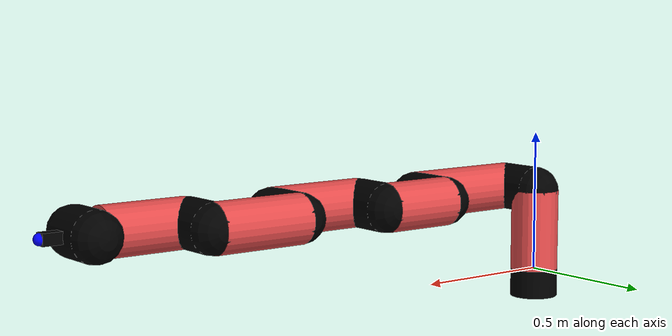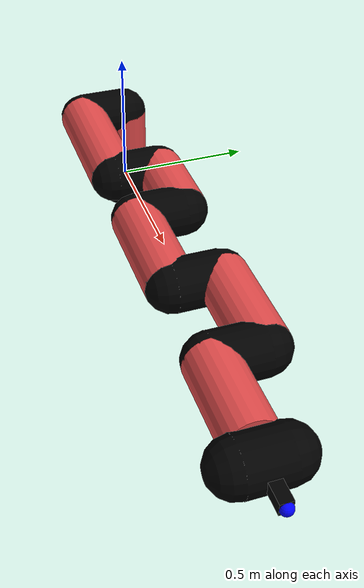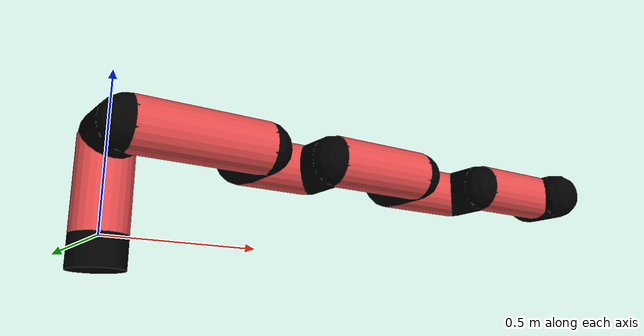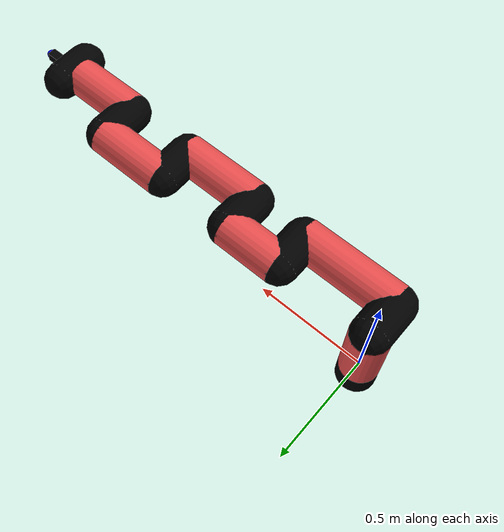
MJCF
<mujoco model="manipulator">
		<compiler angle="degree" coordinate="local" inertiafromgeom="auto" meshdir="meshes/"/>
		<option gravity="0 0 0" integrator="RK4" iterations="30" timestep="0.01"/>

		<default>
		<joint armature="1" limited="true" stiffness="10" damping="15" frictionloss="5.0"/>
		<geom conaffinity="1" condim="3" contype="1" friction=".5 .1 .1" margin="0.002"/>
		<motor ctrllimited="true"/>
		<position ctrllimited="true"/>
		</default>

		<asset>
		<texture builtin="gradient" height="100" rgb1="1.0 1.0 1.0" rgb2="1.0 1.0 1.0" type="skybox" width="100"/>
		<texture builtin="flat" height="32" name="arm_tex" rgb1="0.9 0.3 0.3" type="2d" width="32"/>
		<texture builtin="flat" height="32" name="gripper_tex" rgb1="0.0 0.0 0.0" type="cube" width="32"/>

		<material name="arm_mat" shininess="0.1" specular="0.1" texture="arm_tex"/>
		<material name="gripper_mat" shininess="1" specular="1" texture="gripper_tex"/>
		</asset>

		<worldbody>
		<light cutoff="45" diffuse=".8 .8 .8" dir="0 0.16 -1" directional="false" name="light" pos="0 -2.0 8.0" specular="0.3 0.3 0.3"/>

		<body name="base_link" pos="0 0 -0.1">
		<geom fromto="0 0 0 0 0 0.1" material="arm_mat" name="base_link" rgba="0.0 0.0 0.0 1" size="0.085" type="cylinder"/>
		</body>

		<body name="l1" pos="0 0 0">
<geom fromto="0 0 0 0 0 0.29" material="arm_mat" name="l1" rgba="0.9 0.3 0.3 1" size="0.085" type="cylinder"/>
<geom fromto="0 0 0.29 0 -0.16 0.29" material="arm_mat" name="l1_ex" rgba="0.0 0.0 0.0 1" size="0.085" type="capsule"/>
<joint axis="0 0 1" name="j1" pos="0 0 0" range="-90 90" damping="29.95" frictionloss="12.37"/>

<body name="l2" pos="0 -0.16 0.29">
<geom fromto="0 0 0 0.44 0 0" material="arm_mat" name="l2" rgba="0.9 0.3 0.3 1" size="0.085" type="cylinder"/>
<geom fromto="0.44 0 0 0.44 0.16 0" material="arm_mat" name="l2_ex" rgba="0.0 0.0 0.0 1" size="0.085" type="capsule"/>
<joint axis="0.0 1.0 0.0" name="j2" pos="0 0 0" range="-90 60" damping="36.94" frictionloss="11.28"/>

<body name="l3" pos="0.44 0.16 0">
<geom fromto="0 0 0 0.26 0 0" material="arm_mat" name="l3" rgba="0.9 0.3 0.3 1" size="0.085" type="cylinder"/>
<geom fromto="0.26 0 0 0.26 -0.16 0" material="arm_mat" name="l3_ex" rgba="0.0 0.0 0.0 1" size="0.085" type="capsule"/>
<joint axis="0.0 1.0 0.0" name="j3" pos="0 0 0" range="-30 60" damping="26.89" frictionloss="11.37"/>

<body name="l4" pos="0.26 -0.16 0">
<geom fromto="0 0 0 0.36 0 0" material="arm_mat" name="l4" rgba="0.9 0.3 0.3 1" size="0.085" type="cylinder"/>
<geom fromto="0.36 0 0 0.36 0.16 0" material="arm_mat" name="l4_ex" rgba="0.0 0.0 0.0 1" size="0.085" type="capsule"/>
<joint axis="0.0 1.0 0.0" name="j4" pos="0 0 0" range="-30 60" damping="33.1" frictionloss="11.83"/>

<body name="l5" pos="0.36 0.16 0">
<geom fromto="0 0 0 0.33 0 0" material="arm_mat" name="l5" rgba="0.9 0.3 0.3 1" size="0.085" type="cylinder"/>
<geom fromto="0.33 0 0 0.33 -0.16 0" material="arm_mat" name="l5_ex" rgba="0.0 0.0 0.0 1" size="0.085" type="capsule"/>
<joint axis="0.0 1.0 0.0" name="j5" pos="0 0 0" range="-30 60" damping="30.46" frictionloss="12.05"/>

<body name="l6" pos="0.33 -0.16 0">
<geom fromto="0 0 0 0.31 0 0" material="arm_mat" name="l6" rgba="0.9 0.3 0.3 1" size="0.085" type="cylinder"/>
<joint axis="0.0 1.0 0.0" name="j6" pos="0 0 0" range="-30 60" damping="30.34" frictionloss="8.93"/>

<body name="gripper" pos="0.31 0 0">
<geom fromto="0.05 -0.07 0 0.05 0.07 0" material="gripper_mat" name="gripper" rgba="0.0 0.0 0.0 1" size="0.085" type="capsule"/><joint axis="1 0 0" name="j7" pos="0 0 0" range="-90 90" damping="15" frictionloss="5.0"/><body name="finger" pos="0.1 0 0">
<geom fromto="0 0.0 0 0.1 0.0 0" material="gripper_mat" name="finger" rgba="0.0 0.0 0.0 1" size="0.020 0.06 0.06" type="box"/>
</body>
<site name="current" pos="0.2 0. 0.0" rgba="0. 0. 1.0 1" size="0.02" type="sphere"/>
</body>
</body>
</body>
</body>
</body>
</body>
</body>
</worldbody>
<actuator>
<motor ctrllimited="true" ctrlrange="-1.0 1.0" joint="j1" gear="74.86"/>
<motor ctrllimited="true" ctrlrange="-1.0 1.0" joint="j2" gear="62.64"/>
<motor ctrllimited="true" ctrlrange="-1.0 1.0" joint="j3" gear="71.74"/>
<motor ctrllimited="true" ctrlrange="-1.0 1.0" joint="j4" gear="93.88"/>
<motor ctrllimited="true" ctrlrange="-1.0 1.0" joint="j5" gear="67.96"/>
<motor ctrllimited="true" ctrlrange="-1.0 1.0" joint="j6" gear="82.21"/>
<motor ctrllimited="true" ctrlrange="-1.0 1.0" joint="j7" gear="80"/>
</actuator>
</mujoco>
